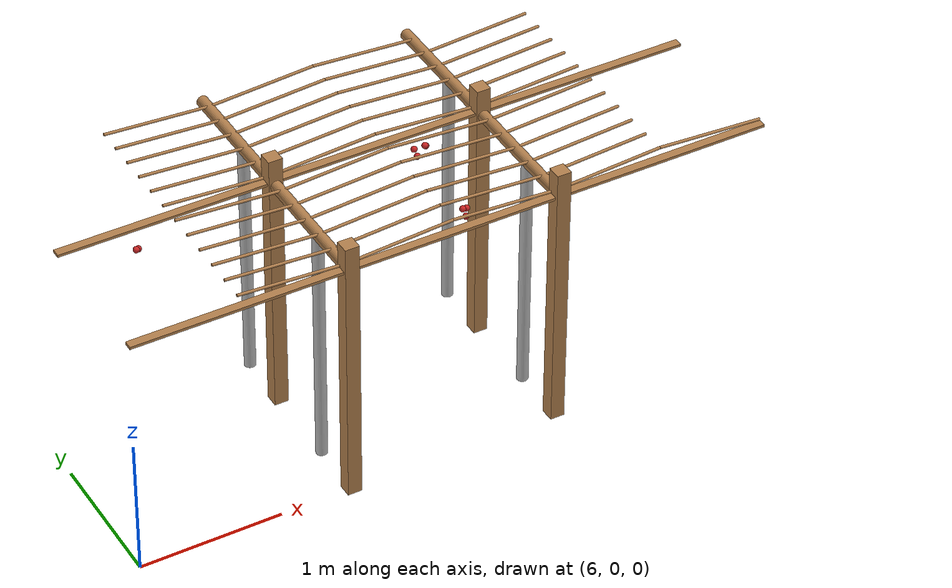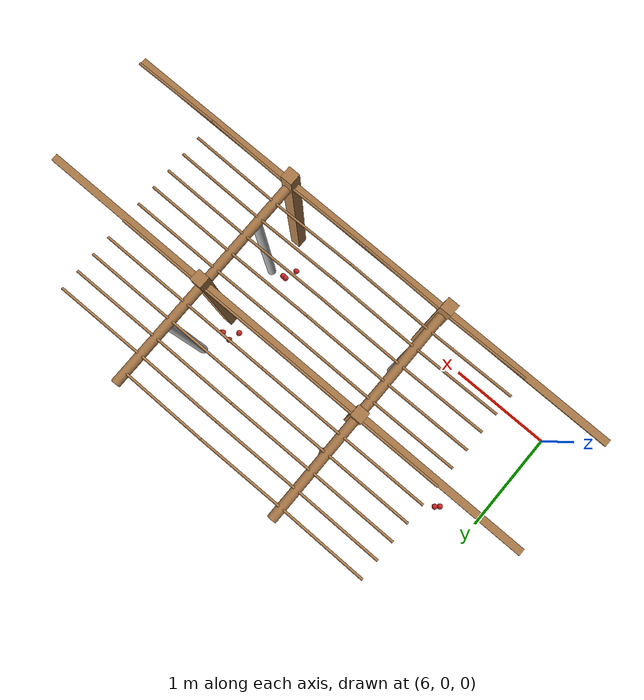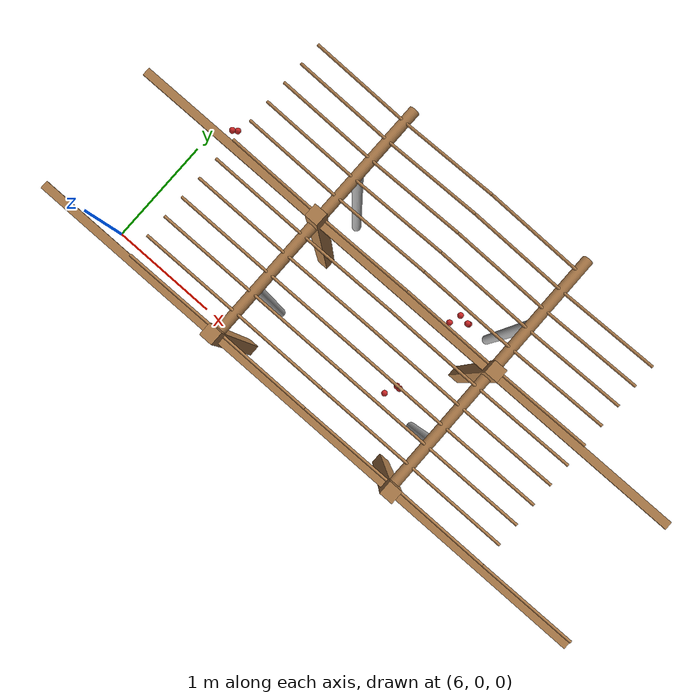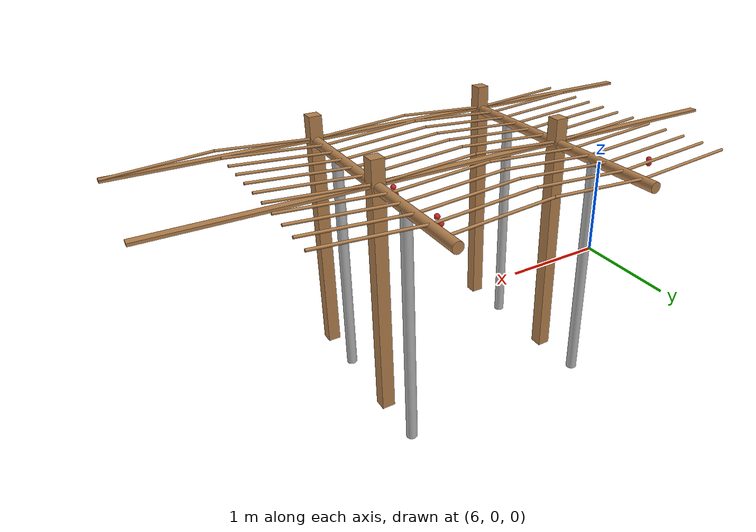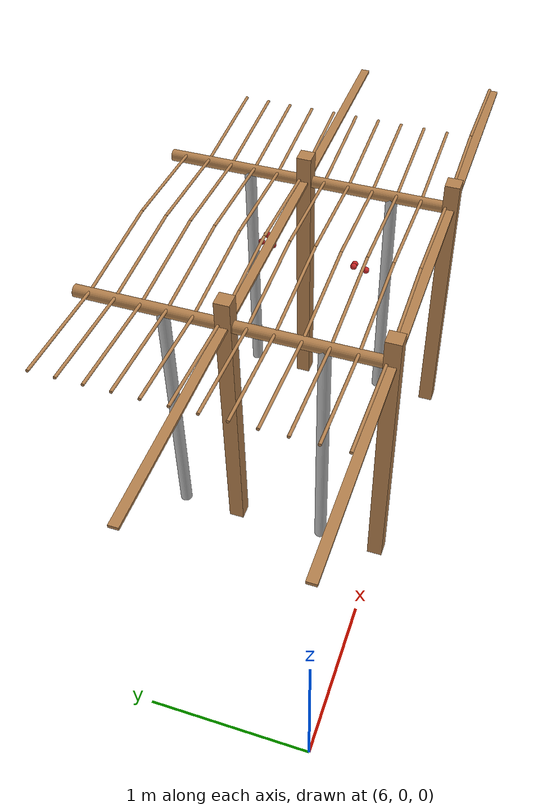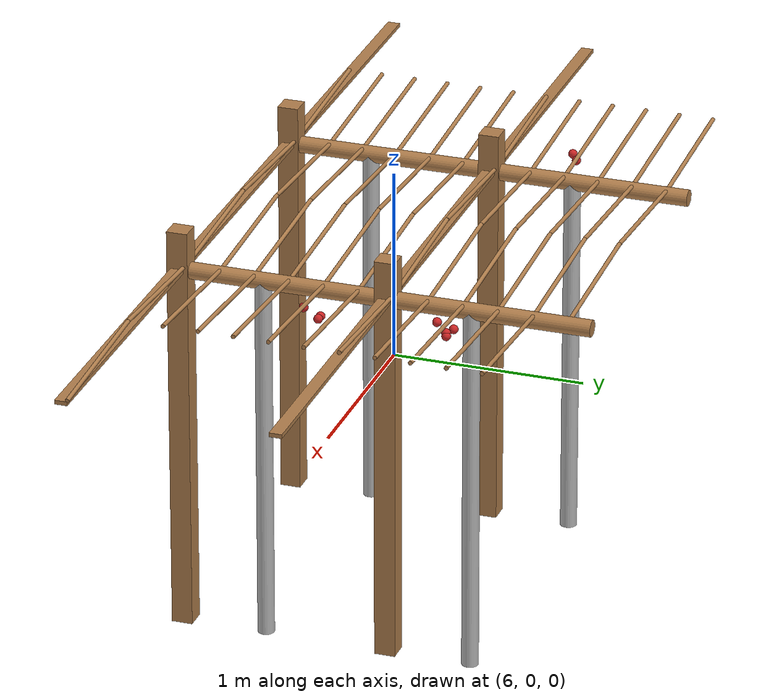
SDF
<sdf version="1.4">
 <model name="pergola">
  <include><name>post_55</name><pose>7.5 0.0 0 0 0 0</pose><uri>model://post</uri></include>
  <include><name>post_56</name><pose>7.5 1.0 0 0 0 0</pose><uri>model://post</uri></include>
  <include><name>post_66</name><pose>9.0 0.0 0 0 0 0</pose><uri>model://post</uri></include>
  <include><name>post_67</name><pose>9.0 1.0 0 0 0 0</pose><uri>model://post</uri></include>
  <link name="beam_44">
   <pose>6.75 0.0 1.81 0 0 0</pose>
   <collision name="collision"><geometry><box><size>1.5 0.06 0.02</size></box></geometry></collision>
   <visual name="visual">
    <geometry><box><size>1.5 0.06 0.02</size></box></geometry>
    <material><script><name>Gazebo/Wood</name></script></material>
   </visual>
   <inertial>
    <mass>5</mass>
    <inertia>
     <ixx>0.0016666666666666668</ixx>
     <ixy>0.0</ixy>
     <ixz>0.0</ixz>
     <iyy>0.9390000000000001</iyy>
     <iyz>0.0</iyz>
     <izz>0.9376666666666665</izz>
    </inertia>
   </inertial>
  </link>
  <link name="beam_45">
   <pose>6.75 1.0 1.81 0 0 0</pose>
   <collision name="collision"><geometry><box><size>1.5 0.06 0.02</size></box></geometry></collision>
   <visual name="visual">
    <geometry><box><size>1.5 0.06 0.02</size></box></geometry>
    <material><script><name>Gazebo/Wood</name></script></material>
   </visual>
   <inertial>
    <mass>5</mass>
    <inertia>
     <ixx>0.0016666666666666668</ixx>
     <ixy>0.0</ixy>
     <ixz>0.0</ixz>
     <iyy>0.9390000000000001</iyy>
     <iyz>0.0</iyz>
     <izz>0.9376666666666665</izz>
    </inertia>
   </inertial>
  </link>
  <link name="beam_55">
   <pose>8.25 0.0 1.81 0 0 0</pose>
   <collision name="collision"><geometry><box><size>1.5 0.06 0.02</size></box></geometry></collision>
   <visual name="visual">
    <geometry><box><size>1.5 0.06 0.02</size></box></geometry>
    <material><script><name>Gazebo/Wood</name></script></material>
   </visual>
   <inertial>
    <mass>5</mass>
    <inertia>
     <ixx>0.0016666666666666668</ixx>
     <ixy>0.0</ixy>
     <ixz>0.0</ixz>
     <iyy>0.9390000000000001</iyy>
     <iyz>0.0</iyz>
     <izz>0.9376666666666665</izz>
    </inertia>
   </inertial>
  </link>
  <link name="beam_56">
   <pose>8.25 1.0 1.81 0 0 0</pose>
   <collision name="collision"><geometry><box><size>1.5 0.06 0.02</size></box></geometry></collision>
   <visual name="visual">
    <geometry><box><size>1.5 0.06 0.02</size></box></geometry>
    <material><script><name>Gazebo/Wood</name></script></material>
   </visual>
   <inertial>
    <mass>5</mass>
    <inertia>
     <ixx>0.0016666666666666668</ixx>
     <ixy>0.0</ixy>
     <ixz>0.0</ixz>
     <iyy>0.9390000000000001</iyy>
     <iyz>0.0</iyz>
     <izz>0.9376666666666665</izz>
    </inertia>
   </inertial>
  </link>
  <link name="beam_66">
   <pose>9.75 0.0 1.81 0 0 0</pose>
   <collision name="collision"><geometry><box><size>1.5 0.06 0.02</size></box></geometry></collision>
   <visual name="visual">
    <geometry><box><size>1.5 0.06 0.02</size></box></geometry>
    <material><script><name>Gazebo/Wood</name></script></material>
   </visual>
   <inertial>
    <mass>5</mass>
    <inertia>
     <ixx>0.0016666666666666668</ixx>
     <ixy>0.0</ixy>
     <ixz>0.0</ixz>
     <iyy>0.9390000000000001</iyy>
     <iyz>0.0</iyz>
     <izz>0.9376666666666665</izz>
    </inertia>
   </inertial>
  </link>
  <link name="beam_67">
   <pose>9.75 1.0 1.81 0 0 0</pose>
   <collision name="collision"><geometry><box><size>1.5 0.06 0.02</size></box></geometry></collision>
   <visual name="visual">
    <geometry><box><size>1.5 0.06 0.02</size></box></geometry>
    <material><script><name>Gazebo/Wood</name></script></material>
   </visual>
   <inertial>
    <mass>5</mass>
    <inertia>
     <ixx>0.0016666666666666668</ixx>
     <ixy>0.0</ixy>
     <ixz>0.0</ixz>
     <iyy>0.9390000000000001</iyy>
     <iyz>0.0</iyz>
     <izz>0.9376666666666665</izz>
    </inertia>
   </inertial>
  </link>
  <include><name>tree_50</name><pose>7.5 0.4 0 0 0 0</pose><uri>model://tree_trunk</uri></include>
  <include><name>tree_51</name><pose>7.5 1.4 0 0 0 0</pose><uri>model://tree_trunk</uri></include>
  <include><name>tree_60</name><pose>9.0 0.4 0 0 0 0</pose><uri>model://tree_trunk</uri></include>
  <include><name>tree_61</name><pose>9.0 1.4 0 0 0 0</pose><uri>model://tree_trunk</uri></include>
  <link name="baseBranch_50">
   <pose>7.5 0.5 1.8 1.5707963267948966 0 0</pose>
   <collision name="collision">
    <geometry><cylinder><radius>0.04</radius><length>0.94</length></cylinder></geometry>
   </collision>
   <visual name="visual">
    <geometry><cylinder><radius>0.04</radius><length>0.94</length></cylinder></geometry>
    <material><script><name>Gazebo/WoodFloor</name></script></material>
   </visual>
   <inertial>
    <mass>10</mass>
    <inertia>
     <ixx>0.7403333333333334</ixx>
     <ixy>0.0</ixy>
     <ixz>0.0</ixz>
     <iyy>0.7403333333333334</iyy>
     <iyz>0.0</iyz>
     <izz>0.008</izz>
    </inertia>
   </inertial>
  </link>
  <link name="baseBranch_51">
   <pose>7.5 1.5 1.8 1.5707963267948966 0 0</pose>
   <collision name="collision">
    <geometry><cylinder><radius>0.04</radius><length>0.94</length></cylinder></geometry>
   </collision>
   <visual name="visual">
    <geometry><cylinder><radius>0.04</radius><length>0.94</length></cylinder></geometry>
    <material><script><name>Gazebo/WoodFloor</name></script></material>
   </visual>
   <inertial>
    <mass>10</mass>
    <inertia>
     <ixx>0.7403333333333334</ixx>
     <ixy>0.0</ixy>
     <ixz>0.0</ixz>
     <iyy>0.7403333333333334</iyy>
     <iyz>0.0</iyz>
     <izz>0.008</izz>
    </inertia>
   </inertial>
  </link>
  <link name="baseBranch_60">
   <pose>9.0 0.5 1.8 1.5707963267948966 0 0</pose>
   <collision name="collision">
    <geometry><cylinder><radius>0.04</radius><length>0.94</length></cylinder></geometry>
   </collision>
   <visual name="visual">
    <geometry><cylinder><radius>0.04</radius><length>0.94</length></cylinder></geometry>
    <material><script><name>Gazebo/WoodFloor</name></script></material>
   </visual>
   <inertial>
    <mass>10</mass>
    <inertia>
     <ixx>0.7403333333333334</ixx>
     <ixy>0.0</ixy>
     <ixz>0.0</ixz>
     <iyy>0.7403333333333334</iyy>
     <iyz>0.0</iyz>
     <izz>0.008</izz>
    </inertia>
   </inertial>
  </link>
  <link name="baseBranch_61">
   <pose>9.0 1.5 1.8 1.5707963267948966 0 0</pose>
   <collision name="collision">
    <geometry><cylinder><radius>0.04</radius><length>0.94</length></cylinder></geometry>
   </collision>
   <visual name="visual">
    <geometry><cylinder><radius>0.04</radius><length>0.94</length></cylinder></geometry>
    <material><script><name>Gazebo/WoodFloor</name></script></material>
   </visual>
   <inertial>
    <mass>10</mass>
    <inertia>
     <ixx>0.7403333333333334</ixx>
     <ixy>0.0</ixy>
     <ixz>0.0</ixz>
     <iyy>0.7403333333333334</iyy>
     <iyz>0.0</iyz>
     <izz>0.008</izz>
    </inertia>
   </inertial>
  </link>
  <link name="vine_481">
   <pose>7.125 0.03 1.85 0 -1.5042281630190728 0</pose>
   <collision name="collision">
    <geometry><cylinder><radius>0.01</radius><length>0.7516648189186453</length></cylinder></geometry>
   </collision>
   <visual name="visual">
    <geometry><cylinder><radius>0.01</radius><length>0.7516648189186453</length></cylinder></geometry>
    <material><script><name>Gazebo/WoodFloor</name></script></material>
   </visual>
   <inertial>
    <mass>5</mass>
    <inertia>
     <ixx>0.23554166666666657</ixx>
     <ixy>0.0</ixy>
     <ixz>0.0</ixz>
     <iyy>0.23554166666666657</iyy>
     <iyz>0.0</iyz>
     <izz>0.00025</izz>
    </inertia>
   </inertial>
  </link>
  <link name="vine_483">
   <pose>7.125 0.19666666666666666 1.85 0 -1.5042281630190728 0</pose>
   <collision name="collision">
    <geometry><cylinder><radius>0.01</radius><length>0.7516648189186453</length></cylinder></geometry>
   </collision>
   <visual name="visual">
    <geometry><cylinder><radius>0.01</radius><length>0.7516648189186453</length></cylinder></geometry>
    <material><script><name>Gazebo/WoodFloor</name></script></material>
   </visual>
   <inertial>
    <mass>5</mass>
    <inertia>
     <ixx>0.23554166666666657</ixx>
     <ixy>0.0</ixy>
     <ixz>0.0</ixz>
     <iyy>0.23554166666666657</iyy>
     <iyz>0.0</iyz>
     <izz>0.00025</izz>
    </inertia>
   </inertial>
  </link>
  <link name="vine_485">
   <pose>7.125 0.3633333333333333 1.85 0 -1.5042281630190728 0</pose>
   <collision name="collision">
    <geometry><cylinder><radius>0.01</radius><length>0.7516648189186453</length></cylinder></geometry>
   </collision>
   <visual name="visual">
    <geometry><cylinder><radius>0.01</radius><length>0.7516648189186453</length></cylinder></geometry>
    <material><script><name>Gazebo/WoodFloor</name></script></material>
   </visual>
   <inertial>
    <mass>5</mass>
    <inertia>
     <ixx>0.23554166666666657</ixx>
     <ixy>0.0</ixy>
     <ixz>0.0</ixz>
     <iyy>0.23554166666666657</iyy>
     <iyz>0.0</iyz>
     <izz>0.00025</izz>
    </inertia>
   </inertial>
  </link>
  <link name="vine_487">
   <pose>7.125 0.53 1.85 0 -1.5042281630190728 0</pose>
   <collision name="collision">
    <geometry><cylinder><radius>0.01</radius><length>0.7516648189186453</length></cylinder></geometry>
   </collision>
   <visual name="visual">
    <geometry><cylinder><radius>0.01</radius><length>0.7516648189186453</length></cylinder></geometry>
    <material><script><name>Gazebo/WoodFloor</name></script></material>
   </visual>
   <inertial>
    <mass>5</mass>
    <inertia>
     <ixx>0.23554166666666657</ixx>
     <ixy>0.0</ixy>
     <ixz>0.0</ixz>
     <iyy>0.23554166666666657</iyy>
     <iyz>0.0</iyz>
     <izz>0.00025</izz>
    </inertia>
   </inertial>
  </link>
  <link name="vine_489">
   <pose>7.125 0.6966666666666667 1.85 0 -1.5042281630190728 0</pose>
   <collision name="collision">
    <geometry><cylinder><radius>0.01</radius><length>0.7516648189186453</length></cylinder></geometry>
   </collision>
   <visual name="visual">
    <geometry><cylinder><radius>0.01</radius><length>0.7516648189186453</length></cylinder></geometry>
    <material><script><name>Gazebo/WoodFloor</name></script></material>
   </visual>
   <inertial>
    <mass>5</mass>
    <inertia>
     <ixx>0.23554166666666657</ixx>
     <ixy>0.0</ixy>
     <ixz>0.0</ixz>
     <iyy>0.23554166666666657</iyy>
     <iyz>0.0</iyz>
     <izz>0.00025</izz>
    </inertia>
   </inertial>
  </link>
  <link name="vine_491">
   <pose>7.125 0.8633333333333333 1.85 0 -1.5042281630190728 0</pose>
   <collision name="collision">
    <geometry><cylinder><radius>0.01</radius><length>0.7516648189186453</length></cylinder></geometry>
   </collision>
   <visual name="visual">
    <geometry><cylinder><radius>0.01</radius><length>0.7516648189186453</length></cylinder></geometry>
    <material><script><name>Gazebo/WoodFloor</name></script></material>
   </visual>
   <inertial>
    <mass>5</mass>
    <inertia>
     <ixx>0.23554166666666657</ixx>
     <ixy>0.0</ixy>
     <ixz>0.0</ixz>
     <iyy>0.23554166666666657</iyy>
     <iyz>0.0</iyz>
     <izz>0.00025</izz>
    </inertia>
   </inertial>
  </link>
  <link name="vine_493">
   <pose>7.125 1.03 1.85 0 -1.5042281630190728 0</pose>
   <collision name="collision">
    <geometry><cylinder><radius>0.01</radius><length>0.7516648189186453</length></cylinder></geometry>
   </collision>
   <visual name="visual">
    <geometry><cylinder><radius>0.01</radius><length>0.7516648189186453</length></cylinder></geometry>
    <material><script><name>Gazebo/WoodFloor</name></script></material>
   </visual>
   <inertial>
    <mass>5</mass>
    <inertia>
     <ixx>0.23554166666666657</ixx>
     <ixy>0.0</ixy>
     <ixz>0.0</ixz>
     <iyy>0.23554166666666657</iyy>
     <iyz>0.0</iyz>
     <izz>0.00025</izz>
    </inertia>
   </inertial>
  </link>
  <link name="vine_495">
   <pose>7.125 1.1966666666666665 1.85 0 -1.5042281630190728 0</pose>
   <collision name="collision">
    <geometry><cylinder><radius>0.01</radius><length>0.7516648189186453</length></cylinder></geometry>
   </collision>
   <visual name="visual">
    <geometry><cylinder><radius>0.01</radius><length>0.7516648189186453</length></cylinder></geometry>
    <material><script><name>Gazebo/WoodFloor</name></script></material>
   </visual>
   <inertial>
    <mass>5</mass>
    <inertia>
     <ixx>0.23554166666666657</ixx>
     <ixy>0.0</ixy>
     <ixz>0.0</ixz>
     <iyy>0.23554166666666657</iyy>
     <iyz>0.0</iyz>
     <izz>0.00025</izz>
    </inertia>
   </inertial>
  </link>
  <link name="vine_497">
   <pose>7.125 1.3633333333333333 1.85 0 -1.5042281630190728 0</pose>
   <collision name="collision">
    <geometry><cylinder><radius>0.01</radius><length>0.7516648189186453</length></cylinder></geometry>
   </collision>
   <visual name="visual">
    <geometry><cylinder><radius>0.01</radius><length>0.7516648189186453</length></cylinder></geometry>
    <material><script><name>Gazebo/WoodFloor</name></script></material>
   </visual>
   <inertial>
    <mass>5</mass>
    <inertia>
     <ixx>0.23554166666666657</ixx>
     <ixy>0.0</ixy>
     <ixz>0.0</ixz>
     <iyy>0.23554166666666657</iyy>
     <iyz>0.0</iyz>
     <izz>0.00025</izz>
    </inertia>
   </inertial>
  </link>
  <link name="vine_499">
   <pose>7.125 1.53 1.85 0 -1.5042281630190728 0</pose>
   <collision name="collision">
    <geometry><cylinder><radius>0.01</radius><length>0.7516648189186453</length></cylinder></geometry>
   </collision>
   <visual name="visual">
    <geometry><cylinder><radius>0.01</radius><length>0.7516648189186453</length></cylinder></geometry>
    <material><script><name>Gazebo/WoodFloor</name></script></material>
   </visual>
   <inertial>
    <mass>5</mass>
    <inertia>
     <ixx>0.23554166666666657</ixx>
     <ixy>0.0</ixy>
     <ixz>0.0</ixz>
     <iyy>0.23554166666666657</iyy>
     <iyz>0.0</iyz>
     <izz>0.00025</izz>
    </inertia>
   </inertial>
  </link>
  <link name="vine_501">
   <pose>7.125 1.6966666666666665 1.85 0 -1.5042281630190728 0</pose>
   <collision name="collision">
    <geometry><cylinder><radius>0.01</radius><length>0.7516648189186453</length></cylinder></geometry>
   </collision>
   <visual name="visual">
    <geometry><cylinder><radius>0.01</radius><length>0.7516648189186453</length></cylinder></geometry>
    <material><script><name>Gazebo/WoodFloor</name></script></material>
   </visual>
   <inertial>
    <mass>5</mass>
    <inertia>
     <ixx>0.23554166666666657</ixx>
     <ixy>0.0</ixy>
     <ixz>0.0</ixz>
     <iyy>0.23554166666666657</iyy>
     <iyz>0.0</iyz>
     <izz>0.00025</izz>
    </inertia>
   </inertial>
  </link>
  <link name="vine_503">
   <pose>7.125 1.8633333333333333 1.85 0 -1.5042281630190728 0</pose>
   <collision name="collision">
    <geometry><cylinder><radius>0.01</radius><length>0.7516648189186453</length></cylinder></geometry>
   </collision>
   <visual name="visual">
    <geometry><cylinder><radius>0.01</radius><length>0.7516648189186453</length></cylinder></geometry>
    <material><script><name>Gazebo/WoodFloor</name></script></material>
   </visual>
   <inertial>
    <mass>5</mass>
    <inertia>
     <ixx>0.23554166666666657</ixx>
     <ixy>0.0</ixy>
     <ixz>0.0</ixz>
     <iyy>0.23554166666666657</iyy>
     <iyz>0.0</iyz>
     <izz>0.00025</izz>
    </inertia>
   </inertial>
  </link>
  <link name="vine_600">
   <pose>7.875 0.03 1.85 0 1.5042281630190728 0</pose>
   <collision name="collision">
    <geometry><cylinder><radius>0.01</radius><length>0.7516648189186453</length></cylinder></geometry>
   </collision>
   <visual name="visual">
    <geometry><cylinder><radius>0.01</radius><length>0.7516648189186453</length></cylinder></geometry>
    <material><script><name>Gazebo/WoodFloor</name></script></material>
   </visual>
   <inertial>
    <mass>5</mass>
    <inertia>
     <ixx>0.23554166666666657</ixx>
     <ixy>0.0</ixy>
     <ixz>0.0</ixz>
     <iyy>0.23554166666666657</iyy>
     <iyz>0.0</iyz>
     <izz>0.00025</izz>
    </inertia>
   </inertial>
  </link>
  <link name="vine_601">
   <pose>8.625 0.03 1.85 0 -1.5042281630190728 0</pose>
   <collision name="collision">
    <geometry><cylinder><radius>0.01</radius><length>0.7516648189186453</length></cylinder></geometry>
   </collision>
   <visual name="visual">
    <geometry><cylinder><radius>0.01</radius><length>0.7516648189186453</length></cylinder></geometry>
    <material><script><name>Gazebo/WoodFloor</name></script></material>
   </visual>
   <inertial>
    <mass>5</mass>
    <inertia>
     <ixx>0.23554166666666657</ixx>
     <ixy>0.0</ixy>
     <ixz>0.0</ixz>
     <iyy>0.23554166666666657</iyy>
     <iyz>0.0</iyz>
     <izz>0.00025</izz>
    </inertia>
   </inertial>
  </link>
  <link name="vine_602">
   <pose>7.875 0.19666666666666666 1.85 0 1.5042281630190728 0</pose>
   <collision name="collision">
    <geometry><cylinder><radius>0.01</radius><length>0.7516648189186453</length></cylinder></geometry>
   </collision>
   <visual name="visual">
    <geometry><cylinder><radius>0.01</radius><length>0.7516648189186453</length></cylinder></geometry>
    <material><script><name>Gazebo/WoodFloor</name></script></material>
   </visual>
   <inertial>
    <mass>5</mass>
    <inertia>
     <ixx>0.23554166666666657</ixx>
     <ixy>0.0</ixy>
     <ixz>0.0</ixz>
     <iyy>0.23554166666666657</iyy>
     <iyz>0.0</iyz>
     <izz>0.00025</izz>
    </inertia>
   </inertial>
  </link>
  <link name="vine_603">
   <pose>8.625 0.19666666666666666 1.85 0 -1.5042281630190728 0</pose>
   <collision name="collision">
    <geometry><cylinder><radius>0.01</radius><length>0.7516648189186453</length></cylinder></geometry>
   </collision>
   <visual name="visual">
    <geometry><cylinder><radius>0.01</radius><length>0.7516648189186453</length></cylinder></geometry>
    <material><script><name>Gazebo/WoodFloor</name></script></material>
   </visual>
   <inertial>
    <mass>5</mass>
    <inertia>
     <ixx>0.23554166666666657</ixx>
     <ixy>0.0</ixy>
     <ixz>0.0</ixz>
     <iyy>0.23554166666666657</iyy>
     <iyz>0.0</iyz>
     <izz>0.00025</izz>
    </inertia>
   </inertial>
  </link>
  <link name="vine_604">
   <pose>7.875 0.3633333333333333 1.85 0 1.5042281630190728 0</pose>
   <collision name="collision">
    <geometry><cylinder><radius>0.01</radius><length>0.7516648189186453</length></cylinder></geometry>
   </collision>
   <visual name="visual">
    <geometry><cylinder><radius>0.01</radius><length>0.7516648189186453</length></cylinder></geometry>
    <material><script><name>Gazebo/WoodFloor</name></script></material>
   </visual>
   <inertial>
    <mass>5</mass>
    <inertia>
     <ixx>0.23554166666666657</ixx>
     <ixy>0.0</ixy>
     <ixz>0.0</ixz>
     <iyy>0.23554166666666657</iyy>
     <iyz>0.0</iyz>
     <izz>0.00025</izz>
    </inertia>
   </inertial>
  </link>
  <link name="vine_605">
   <pose>8.625 0.3633333333333333 1.85 0 -1.5042281630190728 0</pose>
   <collision name="collision">
    <geometry><cylinder><radius>0.01</radius><length>0.7516648189186453</length></cylinder></geometry>
   </collision>
   <visual name="visual">
    <geometry><cylinder><radius>0.01</radius><length>0.7516648189186453</length></cylinder></geometry>
    <material><script><name>Gazebo/WoodFloor</name></script></material>
   </visual>
   <inertial>
    <mass>5</mass>
    <inertia>
     <ixx>0.23554166666666657</ixx>
     <ixy>0.0</ixy>
     <ixz>0.0</ixz>
     <iyy>0.23554166666666657</iyy>
     <iyz>0.0</iyz>
     <izz>0.00025</izz>
    </inertia>
   </inertial>
  </link>
  <link name="vine_606">
   <pose>7.875 0.53 1.85 0 1.5042281630190728 0</pose>
   <collision name="collision">
    <geometry><cylinder><radius>0.01</radius><length>0.7516648189186453</length></cylinder></geometry>
   </collision>
   <visual name="visual">
    <geometry><cylinder><radius>0.01</radius><length>0.7516648189186453</length></cylinder></geometry>
    <material><script><name>Gazebo/WoodFloor</name></script></material>
   </visual>
   <inertial>
    <mass>5</mass>
    <inertia>
     <ixx>0.23554166666666657</ixx>
     <ixy>0.0</ixy>
     <ixz>0.0</ixz>
     <iyy>0.23554166666666657</iyy>
     <iyz>0.0</iyz>
     <izz>0.00025</izz>
    </inertia>
   </inertial>
  </link>
  <link name="vine_607">
   <pose>8.625 0.53 1.85 0 -1.5042281630190728 0</pose>
   <collision name="collision">
    <geometry><cylinder><radius>0.01</radius><length>0.7516648189186453</length></cylinder></geometry>
   </collision>
   <visual name="visual">
    <geometry><cylinder><radius>0.01</radius><length>0.7516648189186453</length></cylinder></geometry>
    <material><script><name>Gazebo/WoodFloor</name></script></material>
   </visual>
   <inertial>
    <mass>5</mass>
    <inertia>
     <ixx>0.23554166666666657</ixx>
     <ixy>0.0</ixy>
     <ixz>0.0</ixz>
     <iyy>0.23554166666666657</iyy>
     <iyz>0.0</iyz>
     <izz>0.00025</izz>
    </inertia>
   </inertial>
  </link>
  <link name="vine_608">
   <pose>7.875 0.6966666666666667 1.85 0 1.5042281630190728 0</pose>
   <collision name="collision">
    <geometry><cylinder><radius>0.01</radius><length>0.7516648189186453</length></cylinder></geometry>
   </collision>
   <visual name="visual">
    <geometry><cylinder><radius>0.01</radius><length>0.7516648189186453</length></cylinder></geometry>
    <material><script><name>Gazebo/WoodFloor</name></script></material>
   </visual>
   <inertial>
    <mass>5</mass>
    <inertia>
     <ixx>0.23554166666666657</ixx>
     <ixy>0.0</ixy>
     <ixz>0.0</ixz>
     <iyy>0.23554166666666657</iyy>
     <iyz>0.0</iyz>
     <izz>0.00025</izz>
    </inertia>
   </inertial>
  </link>
  <link name="vine_609">
   <pose>8.625 0.6966666666666667 1.85 0 -1.5042281630190728 0</pose>
   <collision name="collision">
    <geometry><cylinder><radius>0.01</radius><length>0.7516648189186453</length></cylinder></geometry>
   </collision>
   <visual name="visual">
    <geometry><cylinder><radius>0.01</radius><length>0.7516648189186453</length></cylinder></geometry>
    <material><script><name>Gazebo/WoodFloor</name></script></material>
   </visual>
   <inertial>
    <mass>5</mass>
    <inertia>
     <ixx>0.23554166666666657</ixx>
     <ixy>0.0</ixy>
     <ixz>0.0</ixz>
     <iyy>0.23554166666666657</iyy>
     <iyz>0.0</iyz>
     <izz>0.00025</izz>
    </inertia>
   </inertial>
  </link>
  <link name="vine_610">
   <pose>7.875 0.8633333333333333 1.85 0 1.5042281630190728 0</pose>
   <collision name="collision">
    <geometry><cylinder><radius>0.01</radius><length>0.7516648189186453</length></cylinder></geometry>
   </collision>
   <visual name="visual">
    <geometry><cylinder><radius>0.01</radius><length>0.7516648189186453</length></cylinder></geometry>
    <material><script><name>Gazebo/WoodFloor</name></script></material>
   </visual>
   <inertial>
    <mass>5</mass>
    <inertia>
     <ixx>0.23554166666666657</ixx>
     <ixy>0.0</ixy>
     <ixz>0.0</ixz>
     <iyy>0.23554166666666657</iyy>
     <iyz>0.0</iyz>
     <izz>0.00025</izz>
    </inertia>
   </inertial>
  </link>
  <link name="vine_611">
   <pose>8.625 0.8633333333333333 1.85 0 -1.5042281630190728 0</pose>
   <collision name="collision">
    <geometry><cylinder><radius>0.01</radius><length>0.7516648189186453</length></cylinder></geometry>
   </collision>
   <visual name="visual">
    <geometry><cylinder><radius>0.01</radius><length>0.7516648189186453</length></cylinder></geometry>
    <material><script><name>Gazebo/WoodFloor</name></script></material>
   </visual>
   <inertial>
    <mass>5</mass>
    <inertia>
     <ixx>0.23554166666666657</ixx>
     <ixy>0.0</ixy>
     <ixz>0.0</ixz>
     <iyy>0.23554166666666657</iyy>
     <iyz>0.0</iyz>
     <izz>0.00025</izz>
    </inertia>
   </inertial>
  </link>
  <link name="vine_612">
   <pose>7.875 1.03 1.85 0 1.5042281630190728 0</pose>
   <collision name="collision">
    <geometry><cylinder><radius>0.01</radius><length>0.7516648189186453</length></cylinder></geometry>
   </collision>
   <visual name="visual">
    <geometry><cylinder><radius>0.01</radius><length>0.7516648189186453</length></cylinder></geometry>
    <material><script><name>Gazebo/WoodFloor</name></script></material>
   </visual>
   <inertial>
    <mass>5</mass>
    <inertia>
     <ixx>0.23554166666666657</ixx>
     <ixy>0.0</ixy>
     <ixz>0.0</ixz>
     <iyy>0.23554166666666657</iyy>
     <iyz>0.0</iyz>
     <izz>0.00025</izz>
    </inertia>
   </inertial>
  </link>
  <link name="vine_613">
   <pose>8.625 1.03 1.85 0 -1.5042281630190728 0</pose>
   <collision name="collision">
    <geometry><cylinder><radius>0.01</radius><length>0.7516648189186453</length></cylinder></geometry>
   </collision>
   <visual name="visual">
    <geometry><cylinder><radius>0.01</radius><length>0.7516648189186453</length></cylinder></geometry>
    <material><script><name>Gazebo/WoodFloor</name></script></material>
   </visual>
   <inertial>
    <mass>5</mass>
    <inertia>
     <ixx>0.23554166666666657</ixx>
     <ixy>0.0</ixy>
     <ixz>0.0</ixz>
     <iyy>0.23554166666666657</iyy>
     <iyz>0.0</iyz>
     <izz>0.00025</izz>
    </inertia>
   </inertial>
  </link>
  <link name="vine_614">
   <pose>7.875 1.1966666666666665 1.85 0 1.5042281630190728 0</pose>
   <collision name="collision">
    <geometry><cylinder><radius>0.01</radius><length>0.7516648189186453</length></cylinder></geometry>
   </collision>
   <visual name="visual">
    <geometry><cylinder><radius>0.01</radius><length>0.7516648189186453</length></cylinder></geometry>
    <material><script><name>Gazebo/WoodFloor</name></script></material>
   </visual>
   <inertial>
    <mass>5</mass>
    <inertia>
     <ixx>0.23554166666666657</ixx>
     <ixy>0.0</ixy>
     <ixz>0.0</ixz>
     <iyy>0.23554166666666657</iyy>
     <iyz>0.0</iyz>
     <izz>0.00025</izz>
    </inertia>
   </inertial>
  </link>
  <link name="vine_615">
   <pose>8.625 1.1966666666666665 1.85 0 -1.5042281630190728 0</pose>
   <collision name="collision">
    <geometry><cylinder><radius>0.01</radius><length>0.7516648189186453</length></cylinder></geometry>
   </collision>
   <visual name="visual">
    <geometry><cylinder><radius>0.01</radius><length>0.7516648189186453</length></cylinder></geometry>
    <material><script><name>Gazebo/WoodFloor</name></script></material>
   </visual>
   <inertial>
    <mass>5</mass>
    <inertia>
     <ixx>0.23554166666666657</ixx>
     <ixy>0.0</ixy>
     <ixz>0.0</ixz>
     <iyy>0.23554166666666657</iyy>
     <iyz>0.0</iyz>
     <izz>0.00025</izz>
    </inertia>
   </inertial>
  </link>
  <link name="vine_616">
   <pose>7.875 1.3633333333333333 1.85 0 1.5042281630190728 0</pose>
   <collision name="collision">
    <geometry><cylinder><radius>0.01</radius><length>0.7516648189186453</length></cylinder></geometry>
   </collision>
   <visual name="visual">
    <geometry><cylinder><radius>0.01</radius><length>0.7516648189186453</length></cylinder></geometry>
    <material><script><name>Gazebo/WoodFloor</name></script></material>
   </visual>
   <inertial>
    <mass>5</mass>
    <inertia>
     <ixx>0.23554166666666657</ixx>
     <ixy>0.0</ixy>
     <ixz>0.0</ixz>
     <iyy>0.23554166666666657</iyy>
     <iyz>0.0</iyz>
     <izz>0.00025</izz>
    </inertia>
   </inertial>
  </link>
  <link name="vine_617">
   <pose>8.625 1.3633333333333333 1.85 0 -1.5042281630190728 0</pose>
   <collision name="collision">
    <geometry><cylinder><radius>0.01</radius><length>0.7516648189186453</length></cylinder></geometry>
   </collision>
   <visual name="visual">
    <geometry><cylinder><radius>0.01</radius><length>0.7516648189186453</length></cylinder></geometry>
    <material><script><name>Gazebo/WoodFloor</name></script></material>
   </visual>
   <inertial>
    <mass>5</mass>
    <inertia>
     <ixx>0.23554166666666657</ixx>
     <ixy>0.0</ixy>
     <ixz>0.0</ixz>
     <iyy>0.23554166666666657</iyy>
     <iyz>0.0</iyz>
     <izz>0.00025</izz>
    </inertia>
   </inertial>
  </link>
  <link name="vine_618">
   <pose>7.875 1.53 1.85 0 1.5042281630190728 0</pose>
   <collision name="collision">
    <geometry><cylinder><radius>0.01</radius><length>0.7516648189186453</length></cylinder></geometry>
   </collision>
   <visual name="visual">
    <geometry><cylinder><radius>0.01</radius><length>0.7516648189186453</length></cylinder></geometry>
    <material><script><name>Gazebo/WoodFloor</name></script></material>
   </visual>
   <inertial>
    <mass>5</mass>
    <inertia>
     <ixx>0.23554166666666657</ixx>
     <ixy>0.0</ixy>
     <ixz>0.0</ixz>
     <iyy>0.23554166666666657</iyy>
     <iyz>0.0</iyz>
     <izz>0.00025</izz>
    </inertia>
   </inertial>
  </link>
  <link name="vine_619">
   <pose>8.625 1.53 1.85 0 -1.5042281630190728 0</pose>
   <collision name="collision">
    <geometry><cylinder><radius>0.01</radius><length>0.7516648189186453</length></cylinder></geometry>
   </collision>
   <visual name="visual">
    <geometry><cylinder><radius>0.01</radius><length>0.7516648189186453</length></cylinder></geometry>
    <material><script><name>Gazebo/WoodFloor</name></script></material>
   </visual>
   <inertial>
    <mass>5</mass>
    <inertia>
     <ixx>0.23554166666666657</ixx>
     <ixy>0.0</ixy>
     <ixz>0.0</ixz>
     <iyy>0.23554166666666657</iyy>
     <iyz>0.0</iyz>
     <izz>0.00025</izz>
    </inertia>
   </inertial>
  </link>
  <link name="vine_620">
   <pose>7.875 1.6966666666666665 1.85 0 1.5042281630190728 0</pose>
   <collision name="collision">
    <geometry><cylinder><radius>0.01</radius><length>0.7516648189186453</length></cylinder></geometry>
   </collision>
   <visual name="visual">
    <geometry><cylinder><radius>0.01</radius><length>0.7516648189186453</length></cylinder></geometry>
    <material><script><name>Gazebo/WoodFloor</name></script></material>
   </visual>
   <inertial>
    <mass>5</mass>
    <inertia>
     <ixx>0.23554166666666657</ixx>
     <ixy>0.0</ixy>
     <ixz>0.0</ixz>
     <iyy>0.23554166666666657</iyy>
     <iyz>0.0</iyz>
     <izz>0.00025</izz>
    </inertia>
   </inertial>
  </link>
  <link name="vine_621">
   <pose>8.625 1.6966666666666665 1.85 0 -1.5042281630190728 0</pose>
   <collision name="collision">
    <geometry><cylinder><radius>0.01</radius><length>0.7516648189186453</length></cylinder></geometry>
   </collision>
   <visual name="visual">
    <geometry><cylinder><radius>0.01</radius><length>0.7516648189186453</length></cylinder></geometry>
    <material><script><name>Gazebo/WoodFloor</name></script></material>
   </visual>
   <inertial>
    <mass>5</mass>
    <inertia>
     <ixx>0.23554166666666657</ixx>
     <ixy>0.0</ixy>
     <ixz>0.0</ixz>
     <iyy>0.23554166666666657</iyy>
     <iyz>0.0</iyz>
     <izz>0.00025</izz>
    </inertia>
   </inertial>
  </link>
  <link name="vine_622">
   <pose>7.875 1.8633333333333333 1.85 0 1.5042281630190728 0</pose>
   <collision name="collision">
    <geometry><cylinder><radius>0.01</radius><length>0.7516648189186453</length></cylinder></geometry>
   </collision>
   <visual name="visual">
    <geometry><cylinder><radius>0.01</radius><length>0.7516648189186453</length></cylinder></geometry>
    <material><script><name>Gazebo/WoodFloor</name></script></material>
   </visual>
   <inertial>
    <mass>5</mass>
    <inertia>
     <ixx>0.23554166666666657</ixx>
     <ixy>0.0</ixy>
     <ixz>0.0</ixz>
     <iyy>0.23554166666666657</iyy>
     <iyz>0.0</iyz>
     <izz>0.00025</izz>
    </inertia>
   </inertial>
  </link>
  <link name="vine_623">
   <pose>8.625 1.8633333333333333 1.85 0 -1.5042281630190728 0</pose>
   <collision name="collision">
    <geometry><cylinder><radius>0.01</radius><length>0.7516648189186453</length></cylinder></geometry>
   </collision>
   <visual name="visual">
    <geometry><cylinder><radius>0.01</radius><length>0.7516648189186453</length></cylinder></geometry>
    <material><script><name>Gazebo/WoodFloor</name></script></material>
   </visual>
   <inertial>
    <mass>5</mass>
    <inertia>
     <ixx>0.23554166666666657</ixx>
     <ixy>0.0</ixy>
     <ixz>0.0</ixz>
     <iyy>0.23554166666666657</iyy>
     <iyz>0.0</iyz>
     <izz>0.00025</izz>
    </inertia>
   </inertial>
  </link>
  <link name="vine_720">
   <pose>9.375 0.03 1.85 0 1.5042281630190728 0</pose>
   <collision name="collision">
    <geometry><cylinder><radius>0.01</radius><length>0.7516648189186453</length></cylinder></geometry>
   </collision>
   <visual name="visual">
    <geometry><cylinder><radius>0.01</radius><length>0.7516648189186453</length></cylinder></geometry>
    <material><script><name>Gazebo/WoodFloor</name></script></material>
   </visual>
   <inertial>
    <mass>5</mass>
    <inertia>
     <ixx>0.23554166666666657</ixx>
     <ixy>0.0</ixy>
     <ixz>0.0</ixz>
     <iyy>0.23554166666666657</iyy>
     <iyz>0.0</iyz>
     <izz>0.00025</izz>
    </inertia>
   </inertial>
  </link>
  <link name="vine_721">
   <pose>10.125 0.03 1.85 0 -1.5042281630190728 0</pose>
   <collision name="collision">
    <geometry><cylinder><radius>0.01</radius><length>0.7516648189186453</length></cylinder></geometry>
   </collision>
   <visual name="visual">
    <geometry><cylinder><radius>0.01</radius><length>0.7516648189186453</length></cylinder></geometry>
    <material><script><name>Gazebo/WoodFloor</name></script></material>
   </visual>
   <inertial>
    <mass>5</mass>
    <inertia>
     <ixx>0.23554166666666657</ixx>
     <ixy>0.0</ixy>
     <ixz>0.0</ixz>
     <iyy>0.23554166666666657</iyy>
     <iyz>0.0</iyz>
     <izz>0.00025</izz>
    </inertia>
   </inertial>
  </link>
  <link name="vine_722">
   <pose>9.375 0.19666666666666666 1.85 0 1.5042281630190728 0</pose>
   <collision name="collision">
    <geometry><cylinder><radius>0.01</radius><length>0.7516648189186453</length></cylinder></geometry>
   </collision>
   <visual name="visual">
    <geometry><cylinder><radius>0.01</radius><length>0.7516648189186453</length></cylinder></geometry>
    <material><script><name>Gazebo/WoodFloor</name></script></material>
   </visual>
   <inertial>
    <mass>5</mass>
    <inertia>
     <ixx>0.23554166666666657</ixx>
     <ixy>0.0</ixy>
     <ixz>0.0</ixz>
     <iyy>0.23554166666666657</iyy>
     <iyz>0.0</iyz>
     <izz>0.00025</izz>
    </inertia>
   </inertial>
  </link>
  <link name="vine_724">
   <pose>9.375 0.3633333333333333 1.85 0 1.5042281630190728 0</pose>
   <collision name="collision">
    <geometry><cylinder><radius>0.01</radius><length>0.7516648189186453</length></cylinder></geometry>
   </collision>
   <visual name="visual">
    <geometry><cylinder><radius>0.01</radius><length>0.7516648189186453</length></cylinder></geometry>
    <material><script><name>Gazebo/WoodFloor</name></script></material>
   </visual>
   <inertial>
    <mass>5</mass>
    <inertia>
     <ixx>0.23554166666666657</ixx>
     <ixy>0.0</ixy>
     <ixz>0.0</ixz>
     <iyy>0.23554166666666657</iyy>
     <iyz>0.0</iyz>
     <izz>0.00025</izz>
    </inertia>
   </inertial>
  </link>
  <link name="vine_726">
   <pose>9.375 0.53 1.85 0 1.5042281630190728 0</pose>
   <collision name="collision">
    <geometry><cylinder><radius>0.01</radius><length>0.7516648189186453</length></cylinder></geometry>
   </collision>
   <visual name="visual">
    <geometry><cylinder><radius>0.01</radius><length>0.7516648189186453</length></cylinder></geometry>
    <material><script><name>Gazebo/WoodFloor</name></script></material>
   </visual>
   <inertial>
    <mass>5</mass>
    <inertia>
     <ixx>0.23554166666666657</ixx>
     <ixy>0.0</ixy>
     <ixz>0.0</ixz>
     <iyy>0.23554166666666657</iyy>
     <iyz>0.0</iyz>
     <izz>0.00025</izz>
    </inertia>
   </inertial>
  </link>
  <link name="vine_728">
   <pose>9.375 0.6966666666666667 1.85 0 1.5042281630190728 0</pose>
   <collision name="collision">
    <geometry><cylinder><radius>0.01</radius><length>0.7516648189186453</length></cylinder></geometry>
   </collision>
   <visual name="visual">
    <geometry><cylinder><radius>0.01</radius><length>0.7516648189186453</length></cylinder></geometry>
    <material><script><name>Gazebo/WoodFloor</name></script></material>
   </visual>
   <inertial>
    <mass>5</mass>
    <inertia>
     <ixx>0.23554166666666657</ixx>
     <ixy>0.0</ixy>
     <ixz>0.0</ixz>
     <iyy>0.23554166666666657</iyy>
     <iyz>0.0</iyz>
     <izz>0.00025</izz>
    </inertia>
   </inertial>
  </link>
  <link name="vine_730">
   <pose>9.375 0.8633333333333333 1.85 0 1.5042281630190728 0</pose>
   <collision name="collision">
    <geometry><cylinder><radius>0.01</radius><length>0.7516648189186453</length></cylinder></geometry>
   </collision>
   <visual name="visual">
    <geometry><cylinder><radius>0.01</radius><length>0.7516648189186453</length></cylinder></geometry>
    <material><script><name>Gazebo/WoodFloor</name></script></material>
   </visual>
   <inertial>
    <mass>5</mass>
    <inertia>
     <ixx>0.23554166666666657</ixx>
     <ixy>0.0</ixy>
     <ixz>0.0</ixz>
     <iyy>0.23554166666666657</iyy>
     <iyz>0.0</iyz>
     <izz>0.00025</izz>
    </inertia>
   </inertial>
  </link>
  <link name="vine_732">
   <pose>9.375 1.03 1.85 0 1.5042281630190728 0</pose>
   <collision name="collision">
    <geometry><cylinder><radius>0.01</radius><length>0.7516648189186453</length></cylinder></geometry>
   </collision>
   <visual name="visual">
    <geometry><cylinder><radius>0.01</radius><length>0.7516648189186453</length></cylinder></geometry>
    <material><script><name>Gazebo/WoodFloor</name></script></material>
   </visual>
   <inertial>
    <mass>5</mass>
    <inertia>
     <ixx>0.23554166666666657</ixx>
     <ixy>0.0</ixy>
     <ixz>0.0</ixz>
     <iyy>0.23554166666666657</iyy>
     <iyz>0.0</iyz>
     <izz>0.00025</izz>
    </inertia>
   </inertial>
  </link>
  <link name="vine_734">
   <pose>9.375 1.1966666666666665 1.85 0 1.5042281630190728 0</pose>
   <collision name="collision">
    <geometry><cylinder><radius>0.01</radius><length>0.7516648189186453</length></cylinder></geometry>
   </collision>
   <visual name="visual">
    <geometry><cylinder><radius>0.01</radius><length>0.7516648189186453</length></cylinder></geometry>
    <material><script><name>Gazebo/WoodFloor</name></script></material>
   </visual>
   <inertial>
    <mass>5</mass>
    <inertia>
     <ixx>0.23554166666666657</ixx>
     <ixy>0.0</ixy>
     <ixz>0.0</ixz>
     <iyy>0.23554166666666657</iyy>
     <iyz>0.0</iyz>
     <izz>0.00025</izz>
    </inertia>
   </inertial>
  </link>
  <link name="vine_736">
   <pose>9.375 1.3633333333333333 1.85 0 1.5042281630190728 0</pose>
   <collision name="collision">
    <geometry><cylinder><radius>0.01</radius><length>0.7516648189186453</length></cylinder></geometry>
   </collision>
   <visual name="visual">
    <geometry><cylinder><radius>0.01</radius><length>0.7516648189186453</length></cylinder></geometry>
    <material><script><name>Gazebo/WoodFloor</name></script></material>
   </visual>
   <inertial>
    <mass>5</mass>
    <inertia>
     <ixx>0.23554166666666657</ixx>
     <ixy>0.0</ixy>
     <ixz>0.0</ixz>
     <iyy>0.23554166666666657</iyy>
     <iyz>0.0</iyz>
     <izz>0.00025</izz>
    </inertia>
   </inertial>
  </link>
  <link name="vine_738">
   <pose>9.375 1.53 1.85 0 1.5042281630190728 0</pose>
   <collision name="collision">
    <geometry><cylinder><radius>0.01</radius><length>0.7516648189186453</length></cylinder></geometry>
   </collision>
   <visual name="visual">
    <geometry><cylinder><radius>0.01</radius><length>0.7516648189186453</length></cylinder></geometry>
    <material><script><name>Gazebo/WoodFloor</name></script></material>
   </visual>
   <inertial>
    <mass>5</mass>
    <inertia>
     <ixx>0.23554166666666657</ixx>
     <ixy>0.0</ixy>
     <ixz>0.0</ixz>
     <iyy>0.23554166666666657</iyy>
     <iyz>0.0</iyz>
     <izz>0.00025</izz>
    </inertia>
   </inertial>
  </link>
  <link name="vine_740">
   <pose>9.375 1.6966666666666665 1.85 0 1.5042281630190728 0</pose>
   <collision name="collision">
    <geometry><cylinder><radius>0.01</radius><length>0.7516648189186453</length></cylinder></geometry>
   </collision>
   <visual name="visual">
    <geometry><cylinder><radius>0.01</radius><length>0.7516648189186453</length></cylinder></geometry>
    <material><script><name>Gazebo/WoodFloor</name></script></material>
   </visual>
   <inertial>
    <mass>5</mass>
    <inertia>
     <ixx>0.23554166666666657</ixx>
     <ixy>0.0</ixy>
     <ixz>0.0</ixz>
     <iyy>0.23554166666666657</iyy>
     <iyz>0.0</iyz>
     <izz>0.00025</izz>
    </inertia>
   </inertial>
  </link>
  <link name="fruit_17">
   <pose>6.5963431663684196 1.1189268654776983 1.524067283345986 0 0 0</pose>
   <collision name="fruit_collision_17"><geometry><sphere><radius>0.022</radius></sphere></geometry></collision>
   <visual name="visual">
    <geometry><sphere><radius>0.022</radius></sphere></geometry>
    <material><script><name>Gazebo/Red</name></script></material>
   </visual>
   <inertial>
    <mass>0.05</mass>
    <inertia>
     <ixx>9.679999999999999e-06</ixx>
     <ixy>0.0</ixy>
     <ixz>0.0</ixz>
     <iyy>9.679999999999999e-06</iyy>
     <iyz>0.0</iyz>
     <izz>9.679999999999999e-06</izz>
    </inertia>
   </inertial>
   <sensor name="fruit_contact_17" type="contact">
    <contact><collision>fruit_collision_17</collision></contact>
   </sensor>
  </link>
  <link name="fruit_28">
   <pose>8.599990878576703 1.1015990519149774 1.5198698985864063 0 0 0</pose>
   <collision name="fruit_collision_28"><geometry><sphere><radius>0.022</radius></sphere></geometry></collision>
   <visual name="visual">
    <geometry><sphere><radius>0.022</radius></sphere></geometry>
    <material><script><name>Gazebo/Red</name></script></material>
   </visual>
   <inertial>
    <mass>0.05</mass>
    <inertia>
     <ixx>9.679999999999999e-06</ixx>
     <ixy>0.0</ixy>
     <ixz>0.0</ixz>
     <iyy>9.679999999999999e-06</iyy>
     <iyz>0.0</iyz>
     <izz>9.679999999999999e-06</izz>
    </inertia>
   </inertial>
   <sensor name="fruit_contact_28" type="contact">
    <contact><collision>fruit_collision_28</collision></contact>
   </sensor>
  </link>
  <link name="fruit_86">
   <pose>8.583686410710895 0.44581623570455564 1.4874723629806783 0 0 0</pose>
   <collision name="fruit_collision_86"><geometry><sphere><radius>0.022</radius></sphere></geometry></collision>
   <visual name="visual">
    <geometry><sphere><radius>0.022</radius></sphere></geometry>
    <material><script><name>Gazebo/Red</name></script></material>
   </visual>
   <inertial>
    <mass>0.05</mass>
    <inertia>
     <ixx>9.679999999999999e-06</ixx>
     <ixy>0.0</ixy>
     <ixz>0.0</ixz>
     <iyy>9.679999999999999e-06</iyy>
     <iyz>0.0</iyz>
     <izz>9.679999999999999e-06</izz>
    </inertia>
   </inertial>
   <sensor name="fruit_contact_86" type="contact">
    <contact><collision>fruit_collision_86</collision></contact>
   </sensor>
  </link>
  <link name="fruit_135">
   <pose>8.707718459975881 1.1822939525419098 1.509281778826955 0 0 0</pose>
   <collision name="fruit_collision_135"><geometry><sphere><radius>0.022</radius></sphere></geometry></collision>
   <visual name="visual">
    <geometry><sphere><radius>0.022</radius></sphere></geometry>
    <material><script><name>Gazebo/Red</name></script></material>
   </visual>
   <inertial>
    <mass>0.05</mass>
    <inertia>
     <ixx>9.679999999999999e-06</ixx>
     <ixy>0.0</ixy>
     <ixz>0.0</ixz>
     <iyy>9.679999999999999e-06</iyy>
     <iyz>0.0</iyz>
     <izz>9.679999999999999e-06</izz>
    </inertia>
   </inertial>
   <sensor name="fruit_contact_135" type="contact">
    <contact><collision>fruit_collision_135</collision></contact>
   </sensor>
  </link>
  <link name="fruit_155">
   <pose>6.621751402556404 1.1448481620776034 1.5026393526186261 0 0 0</pose>
   <collision name="fruit_collision_155"><geometry><sphere><radius>0.022</radius></sphere></geometry></collision>
   <visual name="visual">
    <geometry><sphere><radius>0.022</radius></sphere></geometry>
    <material><script><name>Gazebo/Red</name></script></material>
   </visual>
   <inertial>
    <mass>0.05</mass>
    <inertia>
     <ixx>9.679999999999999e-06</ixx>
     <ixy>0.0</ixy>
     <ixz>0.0</ixz>
     <iyy>9.679999999999999e-06</iyy>
     <iyz>0.0</iyz>
     <izz>9.679999999999999e-06</izz>
    </inertia>
   </inertial>
   <sensor name="fruit_contact_155" type="contact">
    <contact><collision>fruit_collision_155</collision></contact>
   </sensor>
  </link>
  <link name="fruit_211">
   <pose>8.641509980666031 0.5374498482135477 1.4685617528159056 0 0 0</pose>
   <collision name="fruit_collision_211"><geometry><sphere><radius>0.022</radius></sphere></geometry></collision>
   <visual name="visual">
    <geometry><sphere><radius>0.022</radius></sphere></geometry>
    <material><script><name>Gazebo/Red</name></script></material>
   </visual>
   <inertial>
    <mass>0.05</mass>
    <inertia>
     <ixx>9.679999999999999e-06</ixx>
     <ixy>0.0</ixy>
     <ixz>0.0</ixz>
     <iyy>9.679999999999999e-06</iyy>
     <iyz>0.0</iyz>
     <izz>9.679999999999999e-06</izz>
    </inertia>
   </inertial>
   <sensor name="fruit_contact_211" type="contact">
    <contact><collision>fruit_collision_211</collision></contact>
   </sensor>
  </link>
  <link name="fruit_320">
   <pose>8.698107715872252 1.1782101921445827 1.519705698297839 0 0 0</pose>
   <collision name="fruit_collision_320"><geometry><sphere><radius>0.022</radius></sphere></geometry></collision>
   <visual name="visual">
    <geometry><sphere><radius>0.022</radius></sphere></geometry>
    <material><script><name>Gazebo/Red</name></script></material>
   </visual>
   <inertial>
    <mass>0.05</mass>
    <inertia>
     <ixx>9.679999999999999e-06</ixx>
     <ixy>0.0</ixy>
     <ixz>0.0</ixz>
     <iyy>9.679999999999999e-06</iyy>
     <iyz>0.0</iyz>
     <izz>9.679999999999999e-06</izz>
    </inertia>
   </inertial>
   <sensor name="fruit_contact_320" type="contact">
    <contact><collision>fruit_collision_320</collision></contact>
   </sensor>
  </link>
  <link name="fruit_435">
   <pose>8.61495020262653 0.5392164783196821 1.470082483247273 0 0 0</pose>
   <collision name="fruit_collision_435"><geometry><sphere><radius>0.022</radius></sphere></geometry></collision>
   <visual name="visual">
    <geometry><sphere><radius>0.022</radius></sphere></geometry>
    <material><script><name>Gazebo/Red</name></script></material>
   </visual>
   <inertial>
    <mass>0.05</mass>
    <inertia>
     <ixx>9.679999999999999e-06</ixx>
     <ixy>0.0</ixy>
     <ixz>0.0</ixz>
     <iyy>9.679999999999999e-06</iyy>
     <iyz>0.0</iyz>
     <izz>9.679999999999999e-06</izz>
    </inertia>
   </inertial>
   <sensor name="fruit_contact_435" type="contact">
    <contact><collision>fruit_collision_435</collision></contact>
   </sensor>
  </link>
  <link name="fruit_478">
   <pose>8.625289919170186 1.1902410778800816 1.508154118299844 0 0 0</pose>
   <collision name="fruit_collision_478"><geometry><sphere><radius>0.022</radius></sphere></geometry></collision>
   <visual name="visual">
    <geometry><sphere><radius>0.022</radius></sphere></geometry>
    <material><script><name>Gazebo/Red</name></script></material>
   </visual>
   <inertial>
    <mass>0.05</mass>
    <inertia>
     <ixx>9.679999999999999e-06</ixx>
     <ixy>0.0</ixy>
     <ixz>0.0</ixz>
     <iyy>9.679999999999999e-06</iyy>
     <iyz>0.0</iyz>
     <izz>9.679999999999999e-06</izz>
    </inertia>
   </inertial>
   <sensor name="fruit_contact_478" type="contact">
    <contact><collision>fruit_collision_478</collision></contact>
   </sensor>
  </link>
 </model>
</sdf>
